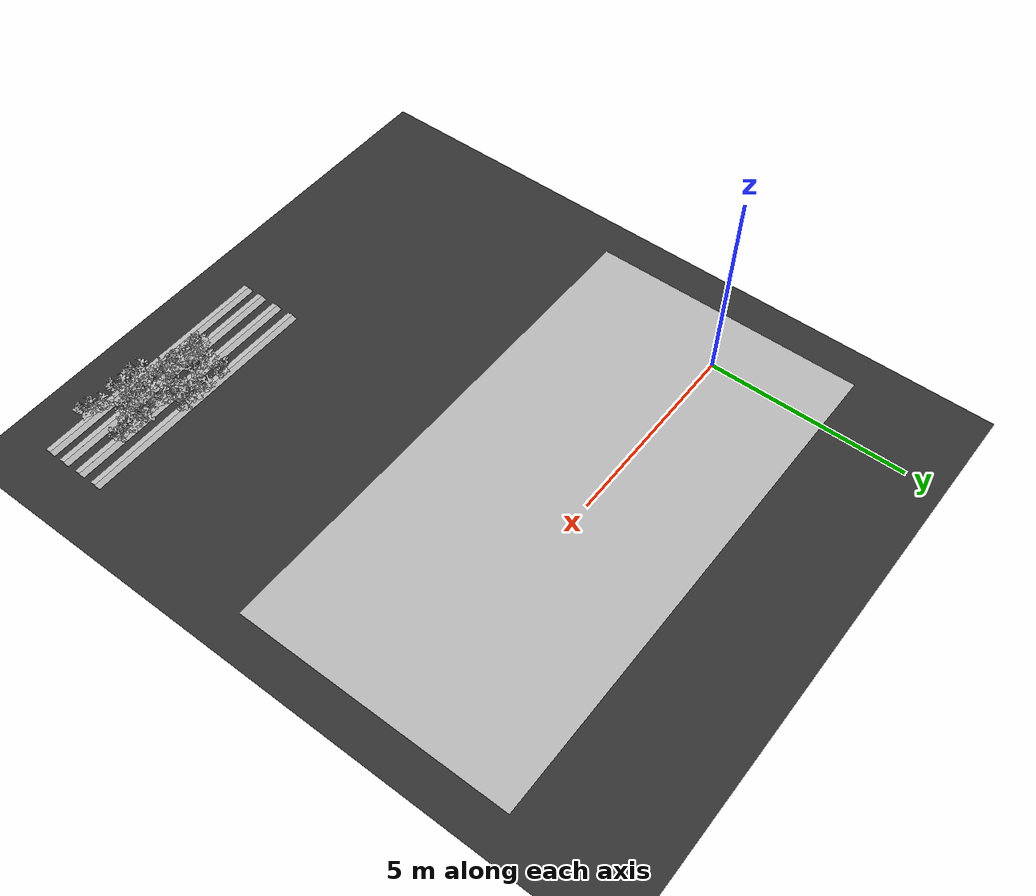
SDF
<sdf version="1.7">
 <world name="default">
  <model name="ground_plane">
   <static>1</static>
   <link name="link">
    <collision name="collision">
     <geometry><plane><normal>0 0 1</normal><size>100 100</size></plane></geometry>
     <surface>
      <contact><collide_bitmask>65535</collide_bitmask></contact>
      <friction><ode><mu>100</mu><mu2>50</mu2></ode></friction>
     </surface>
    </collision>
    <visual name="visual">
     <cast_shadows>0</cast_shadows>
     <geometry><plane><normal>0 0 1</normal><size>100 100</size></plane></geometry>
     <material>
      <ambient>0.2 0.2 0.2 1.0</ambient>
      <diffuse>0.2 0.2 0.2 1.0</diffuse>
      <specular>0.2 0.2 0.2 1.0</specular>
      <emissive>0.2 0.2 0.2 1.0</emissive>
     </material>
    </visual>
   </link>
  </model>
  <model name="ground">
   <pose>5 -0.5 0.01  3.141592654 0 0</pose>
   <static>true</static>
   <link name="body">
    <visual name="visual">
     <cast_shadows>0</cast_shadows>
     <geometry>
      <mesh><uri>file:///home/ifcosta/catkin_ws/src/cnn_line/worlds/models/ground.obj</uri></mesh>
     </geometry>
    </visual>
   </link>
  </model>
  <model name="plt_30028">
   <pose>8.43 -10.2 0.0144 0.0 0.0 -0.61539</pose>
   <static>true</static>
   <link name="body">
    <visual name="visual">
     <geometry>
      <mesh><uri>file:///home/ifcosta/catkin_ws/src/cnn_line/worlds/models/plant30.obj</uri></mesh>
     </geometry>
    </visual>
   </link>
  </model>
  <model name="plt_30029">
   <pose>8.71 -10.2 0.011 0.0 0.0 1.571</pose>
   <static>true</static>
   <link name="body">
    <visual name="visual">
     <geometry>
      <mesh><uri>file:///home/ifcosta/catkin_ws/src/cnn_line/worlds/models/plant32.obj</uri></mesh>
     </geometry>
    </visual>
   </link>
  </model>
  <model name="plt_30030">
   <pose>9.02 -10.2 0.0133 0.0 0.0 -0.69532</pose>
   <static>true</static>
   <link name="body">
    <visual name="visual">
     <geometry>
      <mesh><uri>file:///home/ifcosta/catkin_ws/src/cnn_line/worlds/models/plant30.obj</uri></mesh>
     </geometry>
    </visual>
   </link>
  </model>
  <model name="plt_30032">
   <pose>9.65 -10.2 0.0117 0.0 0.0 -0.04442</pose>
   <static>true</static>
   <link name="body">
    <visual name="visual">
     <geometry>
      <mesh><uri>file:///home/ifcosta/catkin_ws/src/cnn_line/worlds/models/plant36.obj</uri></mesh>
     </geometry>
    </visual>
   </link>
  </model>
  <model name="plt_30033">
   <pose>9.9 -10.3 0.0164 0.0 0.0 0.14816</pose>
   <static>true</static>
   <link name="body">
    <visual name="visual">
     <geometry>
      <mesh><uri>file:///home/ifcosta/catkin_ws/src/cnn_line/worlds/models/plant36.obj</uri></mesh>
     </geometry>
    </visual>
   </link>
  </model>
  <model name="slope_1234">
   <pose>8.0 -10.2 -0.005 0.0 0.0 0.0</pose>
   <static>true</static>
   <link name="body">
    <visual name="visual">
     <geometry>
      <mesh><uri>file:///home/ifcosta/catkin_ws/src/cnn_line/worlds/models/slope.obj</uri></mesh>
     </geometry>
    </visual>
   </link>
  </model>
  <model name="slope_1334">
   <pose>8.0 -10.2 -0.005 0.0 0.0 3.1416</pose>
   <static>true</static>
   <link name="body">
    <visual name="visual">
     <geometry>
      <mesh><uri>file:///home/ifcosta/catkin_ws/src/cnn_line/worlds/models/slope.obj</uri></mesh>
     </geometry>
    </visual>
   </link>
  </model>
  <model name="plt_30057">
   <pose>6.93 -9.73 0.0172 0.0 0.0 -1.7364</pose>
   <static>true</static>
   <link name="body">
    <visual name="visual">
     <geometry>
      <mesh><uri>file:///home/ifcosta/catkin_ws/src/cnn_line/worlds/models/plant35.obj</uri></mesh>
     </geometry>
    </visual>
   </link>
  </model>
  <model name="plt_30058">
   <pose>7.18 -9.76 0.0165 0.0 0.0 -0.50479</pose>
   <static>true</static>
   <link name="body">
    <visual name="visual">
     <geometry>
      <mesh><uri>file:///home/ifcosta/catkin_ws/src/cnn_line/worlds/models/plant31.obj</uri></mesh>
     </geometry>
    </visual>
   </link>
  </model>
  <model name="plt_30059">
   <pose>7.49 -9.74 0.0131 0.0 0.0 0.64364</pose>
   <static>true</static>
   <link name="body">
    <visual name="visual">
     <geometry>
      <mesh><uri>file:///home/ifcosta/catkin_ws/src/cnn_line/worlds/models/plant32.obj</uri></mesh>
     </geometry>
    </visual>
   </link>
  </model>
  <model name="plt_30060">
   <pose>7.75 -9.73 0.013 0.0 0.0 2.8777</pose>
   <static>true</static>
   <link name="body">
    <visual name="visual">
     <geometry>
      <mesh><uri>file:///home/ifcosta/catkin_ws/src/cnn_line/worlds/models/plant30.obj</uri></mesh>
     </geometry>
    </visual>
   </link>
  </model>
  <model name="plt_30061">
   <pose>8.05 -9.73 0.0144 0.0 0.0 0.19461</pose>
   <static>true</static>
   <link name="body">
    <visual name="visual">
     <geometry>
      <mesh><uri>file:///home/ifcosta/catkin_ws/src/cnn_line/worlds/models/plant31.obj</uri></mesh>
     </geometry>
    </visual>
   </link>
  </model>
  <model name="plt_30062">
   <pose>8.37 -9.78 0.018 0.0 0.0 -0.77509</pose>
   <static>true</static>
   <link name="body">
    <visual name="visual">
     <geometry>
      <mesh><uri>file:///home/ifcosta/catkin_ws/src/cnn_line/worlds/models/plant34.obj</uri></mesh>
     </geometry>
    </visual>
   </link>
  </model>
  <model name="plt_30063">
   <pose>8.7 -9.72 0.015 0.0 0.0 2.5345</pose>
   <static>true</static>
   <link name="body">
    <visual name="visual">
     <geometry>
      <mesh><uri>file:///home/ifcosta/catkin_ws/src/cnn_line/worlds/models/plant30.obj</uri></mesh>
     </geometry>
    </visual>
   </link>
  </model>
  <model name="plt_30064">
   <pose>8.95 -9.72 0.016 0.0 0.0 1.7419</pose>
   <static>true</static>
   <link name="body">
    <visual name="visual">
     <geometry>
      <mesh><uri>file:///home/ifcosta/catkin_ws/src/cnn_line/worlds/models/plant31.obj</uri></mesh>
     </geometry>
    </visual>
   </link>
  </model>
  <model name="plt_30065">
   <pose>9.27 -9.71 0.0154 0.0 0.0 -0.10878</pose>
   <static>true</static>
   <link name="body">
    <visual name="visual">
     <geometry>
      <mesh><uri>file:///home/ifcosta/catkin_ws/src/cnn_line/worlds/models/plant34.obj</uri></mesh>
     </geometry>
    </visual>
   </link>
  </model>
  <model name="slope_1268">
   <pose>8.0 -9.75 -0.005 0.0 0.0 0.0</pose>
   <static>true</static>
   <link name="body">
    <visual name="visual">
     <geometry>
      <mesh><uri>file:///home/ifcosta/catkin_ws/src/cnn_line/worlds/models/slope.obj</uri></mesh>
     </geometry>
    </visual>
   </link>
  </model>
  <model name="slope_1368">
   <pose>8.0 -9.75 -0.005 0.0 0.0 3.1416</pose>
   <static>true</static>
   <link name="body">
    <visual name="visual">
     <geometry>
      <mesh><uri>file:///home/ifcosta/catkin_ws/src/cnn_line/worlds/models/slope.obj</uri></mesh>
     </geometry>
    </visual>
   </link>
  </model>
  <model name="plt_30092">
   <pose>7.21 -9.19 0.0153 0.0 0.0 -1.4899</pose>
   <static>true</static>
   <link name="body">
    <visual name="visual">
     <geometry>
      <mesh><uri>file:///home/ifcosta/catkin_ws/src/cnn_line/worlds/models/plant32.obj</uri></mesh>
     </geometry>
    </visual>
   </link>
  </model>
  <model name="plt_30093">
   <pose>7.51 -9.27 0.0173 0.0 0.0 1.3772</pose>
   <static>true</static>
   <link name="body">
    <visual name="visual">
     <geometry>
      <mesh><uri>file:///home/ifcosta/catkin_ws/src/cnn_line/worlds/models/plant32.obj</uri></mesh>
     </geometry>
    </visual>
   </link>
  </model>
  <model name="plt_30095">
   <pose>8.11 -9.23 0.0139 0.0 0.0 1.092</pose>
   <static>true</static>
   <link name="body">
    <visual name="visual">
     <geometry>
      <mesh><uri>file:///home/ifcosta/catkin_ws/src/cnn_line/worlds/models/plant34.obj</uri></mesh>
     </geometry>
    </visual>
   </link>
  </model>
  <model name="plt_30096">
   <pose>8.43 -9.23 0.0131 0.0 0.0 -0.9342</pose>
   <static>true</static>
   <link name="body">
    <visual name="visual">
     <geometry>
      <mesh><uri>file:///home/ifcosta/catkin_ws/src/cnn_line/worlds/models/plant33.obj</uri></mesh>
     </geometry>
    </visual>
   </link>
  </model>
  <model name="plt_30097">
   <pose>8.67 -9.24 0.0174 0.0 0.0 0.0029512</pose>
   <static>true</static>
   <link name="body">
    <visual name="visual">
     <geometry>
      <mesh><uri>file:///home/ifcosta/catkin_ws/src/cnn_line/worlds/models/plant36.obj</uri></mesh>
     </geometry>
    </visual>
   </link>
  </model>
  <model name="plt_30098">
   <pose>9.01 -9.29 0.0137 0.0 0.0 -0.83123</pose>
   <static>true</static>
   <link name="body">
    <visual name="visual">
     <geometry>
      <mesh><uri>file:///home/ifcosta/catkin_ws/src/cnn_line/worlds/models/plant34.obj</uri></mesh>
     </geometry>
    </visual>
   </link>
  </model>
  <model name="plt_30099">
   <pose>9.32 -9.26 0.0167 0.0 0.0 -0.67753</pose>
   <static>true</static>
   <link name="body">
    <visual name="visual">
     <geometry>
      <mesh><uri>file:///home/ifcosta/catkin_ws/src/cnn_line/worlds/models/plant33.obj</uri></mesh>
     </geometry>
    </visual>
   </link>
  </model>
  <model name="plt_30100">
   <pose>9.6 -9.24 0.0157 0.0 0.0 2.4699</pose>
   <static>true</static>
   <link name="body">
    <visual name="visual">
     <geometry>
      <mesh><uri>file:///home/ifcosta/catkin_ws/src/cnn_line/worlds/models/plant32.obj</uri></mesh>
     </geometry>
    </visual>
   </link>
  </model>
  <model name="plt_30101">
   <pose>9.92 -9.22 0.016 0.0 0.0 -0.46023</pose>
   <static>true</static>
   <link name="body">
    <visual name="visual">
     <geometry>
      <mesh><uri>file:///home/ifcosta/catkin_ws/src/cnn_line/worlds/models/plant34.obj</uri></mesh>
     </geometry>
    </visual>
   </link>
  </model>
  <model name="slope_1302">
   <pose>8.0 -9.25 -0.005 0.0 0.0 0.0</pose>
   <static>true</static>
   <link name="body">
    <visual name="visual">
     <geometry>
      <mesh><uri>file:///home/ifcosta/catkin_ws/src/cnn_line/worlds/models/slope.obj</uri></mesh>
     </geometry>
    </visual>
   </link>
  </model>
  <model name="slope_1402">
   <pose>8.0 -9.25 -0.005 0.0 0.0 3.1416</pose>
   <static>true</static>
   <link name="body">
    <visual name="visual">
     <geometry>
      <mesh><uri>file:///home/ifcosta/catkin_ws/src/cnn_line/worlds/models/slope.obj</uri></mesh>
     </geometry>
    </visual>
   </link>
  </model>
  <model name="plt_30126">
   <pose>7.24 -8.78 0.0148 0.0 0.0 0.83379</pose>
   <static>true</static>
   <link name="body">
    <visual name="visual">
     <geometry>
      <mesh><uri>file:///home/ifcosta/catkin_ws/src/cnn_line/worlds/models/plant33.obj</uri></mesh>
     </geometry>
    </visual>
   </link>
  </model>
  <model name="plt_30128">
   <pose>7.77 -8.75 0.0169 0.0 0.0 -1.4824</pose>
   <static>true</static>
   <link name="body">
    <visual name="visual">
     <geometry>
      <mesh><uri>file:///home/ifcosta/catkin_ws/src/cnn_line/worlds/models/plant35.obj</uri></mesh>
     </geometry>
    </visual>
   </link>
  </model>
  <model name="plt_30129">
   <pose>8.1 -8.76 0.0155 0.0 0.0 1.7837</pose>
   <static>true</static>
   <link name="body">
    <visual name="visual">
     <geometry>
      <mesh><uri>file:///home/ifcosta/catkin_ws/src/cnn_line/worlds/models/plant30.obj</uri></mesh>
     </geometry>
    </visual>
   </link>
  </model>
  <model name="plt_30130">
   <pose>8.44 -8.76 0.0182 0.0 0.0 0.22044</pose>
   <static>true</static>
   <link name="body">
    <visual name="visual">
     <geometry>
      <mesh><uri>file:///home/ifcosta/catkin_ws/src/cnn_line/worlds/models/plant33.obj</uri></mesh>
     </geometry>
    </visual>
   </link>
  </model>
  <model name="slope_1336">
   <pose>8.0 -8.75 -0.005 0.0 0.0 0.0</pose>
   <static>true</static>
   <link name="body">
    <visual name="visual">
     <geometry>
      <mesh><uri>file:///home/ifcosta/catkin_ws/src/cnn_line/worlds/models/slope.obj</uri></mesh>
     </geometry>
    </visual>
   </link>
  </model>
  <model name="slope_1436">
   <pose>8.0 -8.75 -0.005 0.0 0.0 3.1416</pose>
   <static>true</static>
   <link name="body">
    <visual name="visual">
     <geometry>
      <mesh><uri>file:///home/ifcosta/catkin_ws/src/cnn_line/worlds/models/slope.obj</uri></mesh>
     </geometry>
    </visual>
   </link>
  </model>
 </world>
</sdf>
